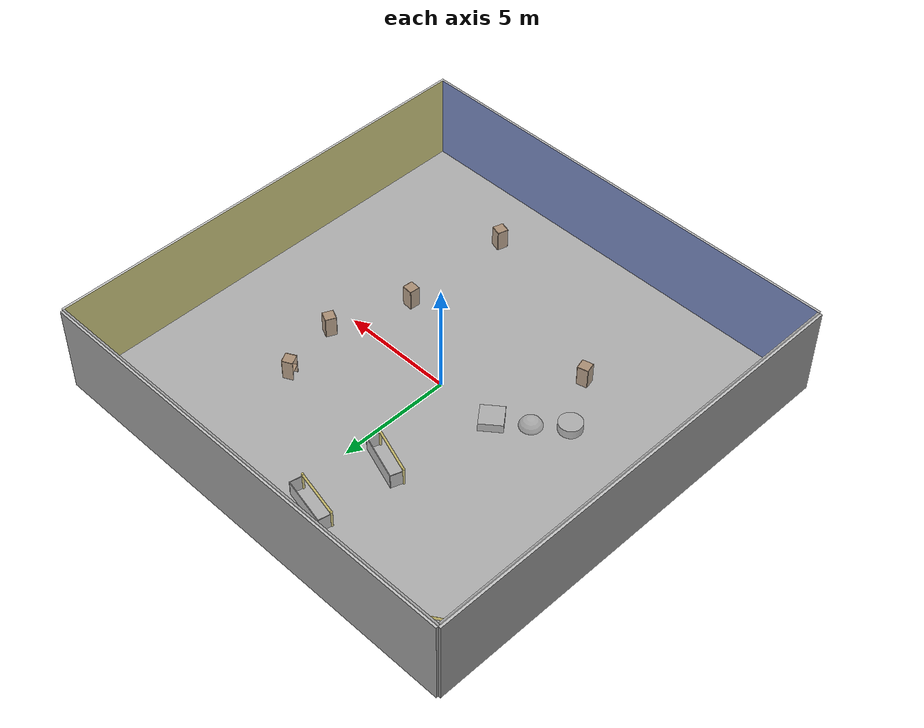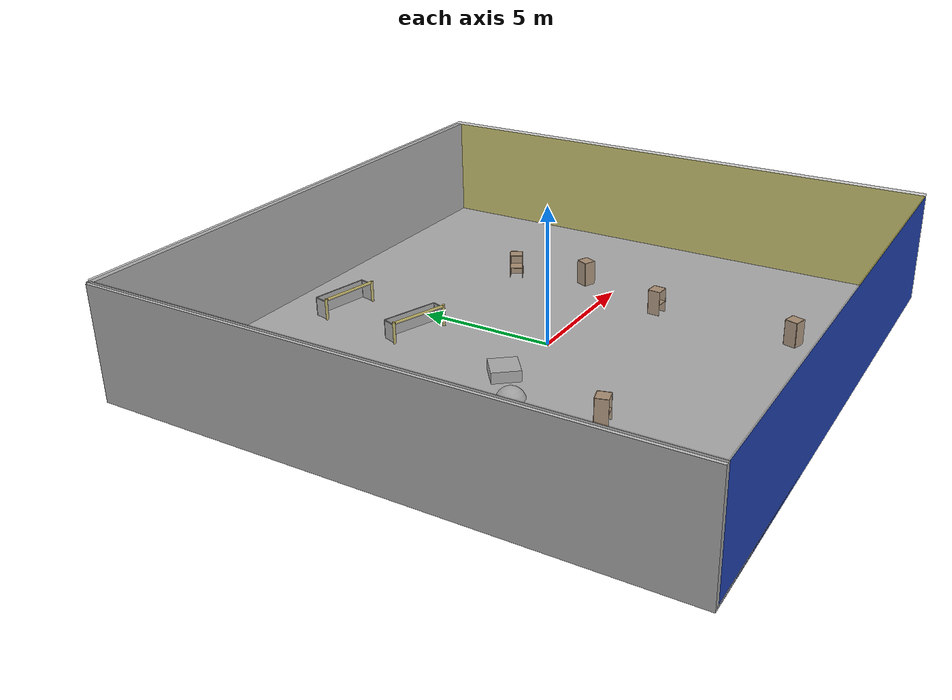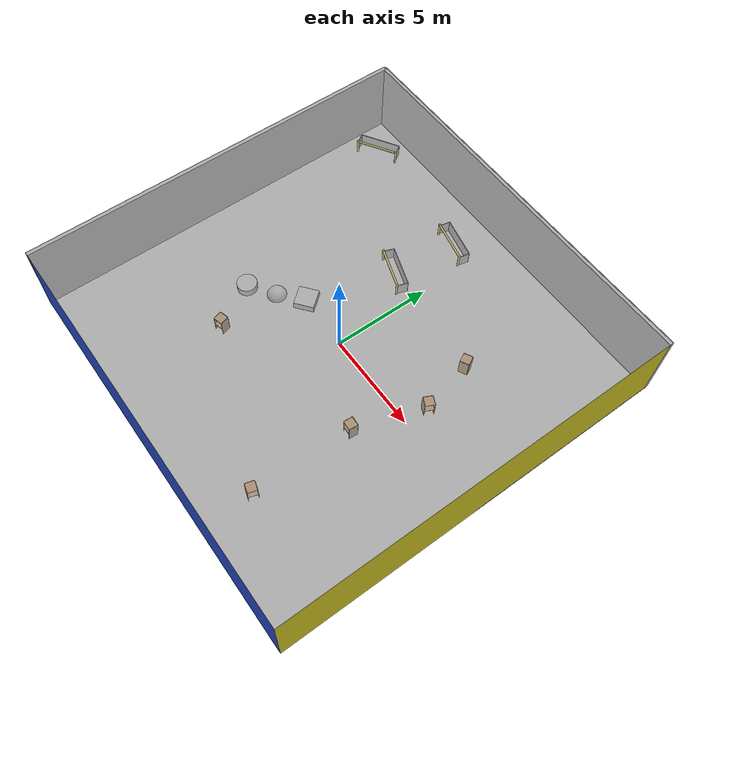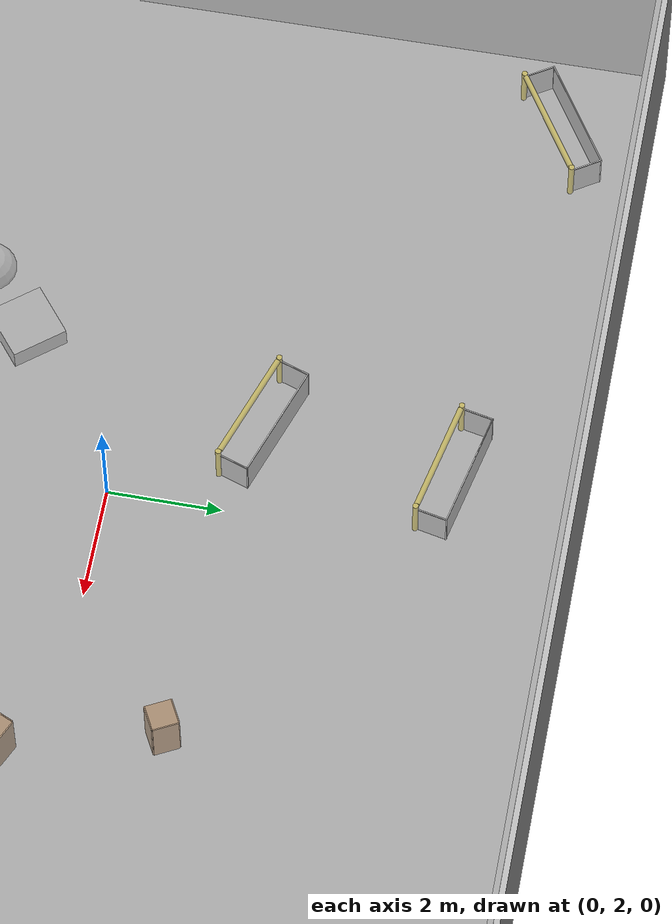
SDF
<sdf version="1.4">
 <world name="default">
  <physics type="ode">
   <max_step_size>0.001</max_step_size>
   <real_time_factor>1</real_time_factor>
   <real_time_update_rate>1000</real_time_update_rate>
   <gravity>0 0 -9.8</gravity>
  </physics>
  <scene><ambient>0.4 0.4 0.4 1</ambient><background>0.7 0.7 0.7 1</background><shadows>1</shadows></scene>
  <model name="Surrounding">
   <static>1</static>
   <link name="Ceiling">
    <collision name="Ceiling_Collision"><geometry><box><size>20 20 0.1</size></box></geometry></collision>
    <visual name="Ceiling_Visual">
     <geometry><box><size>20 20 0.1</size></box></geometry>
     <material>
      <script><uri>file://media/materials/scripts/gazebo.material</uri><name>Gazebo/GreyTransparent</name></script>
     </material>
    </visual>
    <pose>0 0 4.05 0 0 0</pose>
   </link>
   <link name="Wall_South">
    <collision name="Wall_South_Collision">
     <geometry><box><size>20 0 4</size></box></geometry>
     <pose>0 0 2 0 -0 0</pose>
    </collision>
    <visual name="Wall_South_Visual">
     <pose>0 0 2 0 -0 0</pose>
     <geometry><box><size>20 0 4</size></box></geometry>
     <material>
      <script><uri>file://media/materials/scripts/gazebo.material</uri><name>Gazebo/Blue</name></script>
     </material>
    </visual>
    <velocity_decay><linear>0</linear><angular>0</angular></velocity_decay>
    <pose>0 -10 0 0 -0 0</pose>
   </link>
   <link name="Wall_East">
    <collision name="Wall_21_Collision">
     <geometry><box><size>20 0 4</size></box></geometry>
     <pose>0 0 2 0 -0 0</pose>
    </collision>
    <visual name="Wall_21_Visual">
     <pose>0 0 2 0 -0 0</pose>
     <geometry><box><size>20 0 4</size></box></geometry>
     <material>
      <script><uri>file://media/materials/scripts/gazebo.material</uri><name>Gazebo/Yellow</name></script>
     </material>
    </visual>
    <velocity_decay><linear>0</linear><angular>0</angular></velocity_decay>
    <pose>10 0 0 0 -0 1.5708</pose>
   </link>
   <link name="Wall_North">
    <collision name="Wall_22_Collision">
     <geometry><box><size>20 0.2 4</size></box></geometry>
     <pose>0 0 2 0 -0 0</pose>
    </collision>
    <visual name="Wall_22_Visual">
     <pose>0 0 2 0 -0 0</pose>
     <geometry><box><size>20 0.2 4</size></box></geometry>
     <material>
      <script><uri>file://media/materials/scripts/gazebo.material</uri><name>Gazebo/JointAnchor</name></script>
     </material>
    </visual>
    <velocity_decay><linear>0</linear><angular>0</angular></velocity_decay>
    <pose>0 10 0 0 -0 0</pose>
   </link>
   <link name="Wall_West">
    <collision name="Wall_23_Collision">
     <geometry><box><size>20 0.2 4</size></box></geometry>
     <pose>0 0 2 0 -0 0</pose>
    </collision>
    <visual name="Wall_23_Visual">
     <pose>0 0 2 0 -0 0</pose>
     <geometry><box><size>20 0.2 4</size></box></geometry>
     <material>
      <script><uri>file://media/materials/scripts/gazebo.material</uri><name>Gazebo/Pioneer2Body</name></script>
     </material>
    </visual>
    <velocity_decay><linear>0</linear><angular>0</angular></velocity_decay>
    <pose>-10 0 0 0 0 -1.5708</pose>
   </link>
   <link name="Ground_link">
    <collision name="collision">
     <pose>0 0 .05 0 -0 0</pose>
     <geometry><box><size>20 20 0.1</size></box></geometry>
    </collision>
    <visual name="visual">
     <pose>0 0 .05 0 -0 0</pose>
     <geometry><box><size>20 20 0.1</size></box></geometry>
     <material>
      <script><uri>file://media/materials/scripts/gazebo.material</uri><name>Gazebo/LightOn</name></script>
     </material>
    </visual>
   </link>
   <static>1</static>
  </model>
  <spherical_coordinates>
   <surface_model>EARTH_WGS84</surface_model>
   <latitude_deg>0</latitude_deg>
   <longitude_deg>0</longitude_deg>
   <elevation>0</elevation>
   <heading_deg>0</heading_deg>
  </spherical_coordinates>
  <light name="lightball_0" type="diffuse">
   <diffuse>0.8 0.8 0.8 1</diffuse>
   <specular>0.2 0.2 0.2 1</specular>
   <attenuation>
    <range>100</range>
    <constant>0.7</constant>
    <linear>0.01</linear>
    <quadratic>0.001</quadratic>
   </attenuation>
   <direction>-0.5 0.1 -0.9</direction>
   <pose>-2.46909389168 4.97028638599 1.30079603521 0 0 0</pose>
  </light>
  <light name="lightball_1" type="diffuse">
   <diffuse>0.8 0.8 0.8 1</diffuse>
   <specular>0.2 0.2 0.2 1</specular>
   <attenuation>
    <range>100</range>
    <constant>0.7</constant>
    <linear>0.01</linear>
    <quadratic>0.001</quadratic>
   </attenuation>
   <direction>-0.5 0.1 -0.9</direction>
   <pose>-6.74002173532 -7.35271989055 3.68581821452 0 0 0</pose>
  </light>
  <light name="lightball_2" type="diffuse">
   <diffuse>0.8 0.8 0.8 1</diffuse>
   <specular>0.2 0.2 0.2 1</specular>
   <attenuation>
    <range>100</range>
    <constant>0.7</constant>
    <linear>0.01</linear>
    <quadratic>0.001</quadratic>
   </attenuation>
   <direction>-0.5 0.1 -0.9</direction>
   <pose>-8.66643307374 -5.47485891276 3.23098584297 0 0 0</pose>
  </light>
  <light name="lightball_3" type="diffuse">
   <diffuse>0.8 0.8 0.8 1</diffuse>
   <specular>0.2 0.2 0.2 1</specular>
   <attenuation>
    <range>100</range>
    <constant>0.7</constant>
    <linear>0.01</linear>
    <quadratic>0.001</quadratic>
   </attenuation>
   <direction>-0.5 0.1 -0.9</direction>
   <pose>-3.61015989726 2.32452836458 2.37536259964 0 0 0</pose>
  </light>
  <light name="lightball_4" type="diffuse">
   <diffuse>0.8 0.8 0.8 1</diffuse>
   <specular>0.2 0.2 0.2 1</specular>
   <attenuation>
    <range>100</range>
    <constant>0.7</constant>
    <linear>0.01</linear>
    <quadratic>0.001</quadratic>
   </attenuation>
   <direction>-0.5 0.1 -0.9</direction>
   <pose>0.455360185652 -5.94459789351 1.73864353289 0 0 0</pose>
  </light>
  <light name="lightball_5" type="diffuse">
   <diffuse>0.8 0.8 0.8 1</diffuse>
   <specular>0.2 0.2 0.2 1</specular>
   <attenuation>
    <range>100</range>
    <constant>0.7</constant>
    <linear>0.01</linear>
    <quadratic>0.001</quadratic>
   </attenuation>
   <direction>-0.5 0.1 -0.9</direction>
   <pose>-1.6803312655 9.57294373262 3.48305140032 0 0 0</pose>
  </light>
  <light name="lightball_6" type="diffuse">
   <diffuse>0.8 0.8 0.8 1</diffuse>
   <specular>0.2 0.2 0.2 1</specular>
   <attenuation>
    <range>100</range>
    <constant>0.7</constant>
    <linear>0.01</linear>
    <quadratic>0.001</quadratic>
   </attenuation>
   <direction>-0.5 0.1 -0.9</direction>
   <pose>-6.84665544186 -5.82967793277 1.05944860485 0 0 0</pose>
  </light>
  <light name="lightball_7" type="diffuse">
   <diffuse>0.8 0.8 0.8 1</diffuse>
   <specular>0.2 0.2 0.2 1</specular>
   <attenuation>
    <range>100</range>
    <constant>0.7</constant>
    <linear>0.01</linear>
    <quadratic>0.001</quadratic>
   </attenuation>
   <direction>-0.5 0.1 -0.9</direction>
   <pose>6.05571629122 5.10438381491 3.85072857771 0 0 0</pose>
  </light>
  <include>
   <uri>model://robocup_3Dsim_goal</uri>
   <pose>-8.17545251601 8.25751906729 0 0 0 2.13133026457</pose>
  </include>
  <include><uri>model://cabinet</uri><pose>-3.87311541271 -4.01630392614 0 0 0 1.82177569213</pose></include>
  <include>
   <uri>model://textured_shapes</uri>
   <pose>-3.96952002093 -0.88278566526 0 0 0 2.24431311453</pose>
  </include>
  <include>
   <uri>model://robocup_3Dsim_goal</uri>
   <pose>-1.6323700803 4.16822465541 0 0 0 1.24022847306</pose>
  </include>
  <include>
   <uri>model://robocup_3Dsim_goal</uri>
   <pose>-1.2210030114 7.51335421596 0 0 0 1.35814464745</pose>
  </include>
  <include><uri>model://cabinet</uri><pose>3.9200229905 -7.36457107818 0 0 0 2.85305165625</pose></include>
  <include><uri>model://cabinet</uri><pose>3.9918054891 -2.26681439805 0 0 0 1.49295031037</pose></include>
  <include><uri>model://cabinet</uri><pose>5.13210836872 1.17504239626 0 0 0 2.70900553937</pose></include>
  <include><uri>model://cabinet</uri><pose>4.45631547692 3.8617023018 0 0 0 0.479405586788</pose></include>
 </world>
</sdf>

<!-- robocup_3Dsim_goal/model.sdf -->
<sdf version="1.5">
  <model name="robocup_3d_goal">
    <static>true</static>
    <link name="left_post">
      <pose>0 1.05 0.45 0 0 0</pose>
      <collision name="collision">
        <geometry>
          <cylinder>
            <radius>0.05</radius>
            <length>0.9</length>
          </cylinder>
        </geometry>
      </collision>
      <visual name="visual">
        <geometry>
          <cylinder>
            <radius>0.05</radius>
            <length>0.9</length>
          </cylinder>
        </geometry>
        <material>
          <script>
            <uri>file://media/materials/scripts/gazebo.material</uri>
            <name>Gazebo/ZincYellow</name>
          </script>
        </material>
      </visual>
    </link>
    <link name="left_support_horiz_lower">
      <pose>0.30 1.05 0.01 0 0 0</pose>
      <collision name="collision">
        <geometry>
          <box>
            <size>0.50 0.02 0.02</size>
          </box>
        </geometry>
      </collision>
      <visual name="visual">
        <geometry>
          <box>
            <size>0.50 0.02 0.02</size>
          </box>
        </geometry>
        <material>
          <script>
            <uri>file://media/materials/scripts/gazebo.material</uri>
            <name>Gazebo/White</name>
          </script>
        </material>
      </visual>
    </link>
    <link name="left_support_horiz_upper">
      <pose>0.30 1.05 0.79 0 0 0</pose>
      <collision name="collision">
        <geometry>
          <box>
            <size>0.50 0.02 0.02</size>
          </box>
        </geometry>
      </collision>
      <visual name="visual">
        <geometry>
          <box>
            <size>0.50 0.02 0.02</size>
          </box>
        </geometry>
        <material>
          <script>
            <uri>file://media/materials/scripts/gazebo.material</uri>
            <name>Gazebo/White</name>
          </script>
        </material>
      </visual>
    </link>
    <link name="left_support_vertical">
      <pose>0.56 1.05 0.4 0 1.5708 0</pose>
      <collision name="collision">
        <geometry>
          <box>
            <size>0.80 0.02 0.02</size>
          </box>
        </geometry>
      </collision>
      <visual name="visual">
        <geometry>
          <box>
            <size>0.80 0.02 0.02</size>
          </box>
        </geometry>
        <material>
          <script>
            <uri>file://media/materials/scripts/gazebo.material</uri>
            <name>Gazebo/White</name>
          </script>
        </material>
      </visual>
    </link>
    <link name="right_support_horiz_lower">
      <pose>0.30 -1.05 0.01 0 0 0</pose>
      <collision name="collision">
        <geometry>
          <box>
            <size>0.50 0.02 0.02</size>
          </box>
        </geometry>
      </collision>
      <visual name="visual">
        <geometry>
          <box>
            <size>0.50 0.02 0.02</size>
          </box>
        </geometry>
        <material>
          <script>
            <uri>file://media/materials/scripts/gazebo.material</uri>
            <name>Gazebo/White</name>
          </script>
        </material>
      </visual>
    </link>
    <link name="right_support_horiz_upper">
      <pose>0.30 -1.05 0.79 0 0 0</pose>
      <collision name="collision">
        <geometry>
          <box>
            <size>0.50 0.02 0.02</size>
          </box>
        </geometry>
      </collision>
      <visual name="visual">
        <geometry>
          <box>
            <size>0.50 0.02 0.02</size>
          </box>
        </geometry>
        <material>
          <script>
            <uri>file://media/materials/scripts/gazebo.material</uri>
            <name>Gazebo/White</name>
          </script>
        </material>
      </visual>
    </link>
    <link name="right_support_vertical">
      <pose>0.56 -1.05 0.4 0 1.5708 0</pose>
      <collision name="collision">
        <geometry>
          <box>
            <size>0.80 0.02 0.02</size>
          </box>
        </geometry>
      </collision>
      <visual name="visual">
        <geometry>
          <box>
            <size>0.80 0.02 0.02</size>
          </box>
        </geometry>
        <material>
          <script>
            <uri>file://media/materials/scripts/gazebo.material</uri>
            <name>Gazebo/White</name>
          </script>
        </material>
      </visual>
    </link>
    <link name="center_support_horiz_lower">
      <pose>0.56 0 0.01 0 1.5708 0</pose>
      <collision name="collision">
        <geometry>
          <box>
            <size>0.02 2.08 0.02</size>
          </box>
        </geometry>
      </collision>
      <visual name="visual">
        <geometry>
          <box>
            <size>0.02 2.08 0.02</size>
          </box>
        </geometry>
        <material>
          <script>
            <uri>file://media/materials/scripts/gazebo.material</uri>
            <name>Gazebo/White</name>
          </script>
        </material>
      </visual>
    </link>
    <link name="center_support_horiz_upper">
      <pose>0.56 0 0.79 0 1.5708 0</pose>
      <collision name="collision">
        <geometry>
          <box>
            <size>0.02 2.08 0.02</size>
          </box>
        </geometry>
      </collision>
      <visual name="visual">
        <geometry>
          <box>
            <size>0.02 2.08 0.02</size>
          </box>
        </geometry>
        <material>
          <script>
            <uri>file://media/materials/scripts/gazebo.material</uri>
            <name>Gazebo/White</name>
          </script>
        </material>
      </visual>
    </link>
    <link name="right_post">
      <pose>0 -1.05 0.45 0 0 0</pose>
      <collision name="collision">
        <geometry>
          <cylinder>
            <radius>0.05</radius>
            <length>0.9</length>
          </cylinder>
        </geometry>
      </collision>
      <visual name="visual">
        <geometry>
          <cylinder>
            <radius>0.05</radius>
            <length>0.9</length>
          </cylinder>
        </geometry>
        <material>
          <script>
            <uri>file://media/materials/scripts/gazebo.material</uri>
            <name>Gazebo/ZincYellow</name>
          </script>
        </material>
      </visual>
    </link>
    <link name="crossbar">
      <pose>0 0 0.85 1.57 1.57 0</pose>
      <collision name="collision">
        <geometry>
          <cylinder>
            <radius>0.05</radius>
            <length>2.0</length>
          </cylinder>
        </geometry>
      </collision>
      <visual name="visual">
        <geometry>
          <cylinder>
            <radius>0.05</radius>
            <length>2.0</length>
          </cylinder>
        </geometry>
        <material>
          <script>
            <uri>file://media/materials/scripts/gazebo.material</uri>
            <name>Gazebo/ZincYellow</name>
          </script>
        </material>
      </visual>
    </link>
    <link name="center_net">
      <pose>0.56 0 0.40 0 0 0</pose>
      <collision name="collision">
        <geometry>
          <box>
            <size>0.01 2.1 0.80</size>
          </box>
        </geometry>
      </collision>
      <visual name="visual">
        <geometry>
          <box>
            <size>0.01 2.1 0.80</size>
          </box>
        </geometry>
        <material>
          <script>
            <uri>model://../model_source/models/robocup09_spl_field/materials/scripts/</uri>
            <uri>model://../model_source/models/robocup09_spl_field/materials/textures/</uri>
            <name>RoboCup/Net</name>
          </script>
        </material>
      </visual>
    </link>
    <link name="left_net">
      <pose>0.30 1.05 0.40 0 0 0</pose>
      <collision name="collision">
        <geometry>
          <box>
            <size>0.50 0.01 0.76</size>
          </box>
        </geometry>
      </collision>
      <visual name="visual">
        <geometry>
          <box>
            <size>0.50 0.01 0.76</size>
          </box>
        </geometry>
        <material>
          <script>
            <uri>model://../model_source/models/robocup09_spl_field/materials/scripts/</uri>
            <uri>model://../model_source/models/robocup09_spl_field/materials/textures/</uri>
            <name>RoboCup/Net</name>
          </script>
        </material>
      </visual>
    </link>
    <link name="right_net">
      <pose>0.30 -1.05 0.40 0 0 0</pose>
      <collision name="collision">
        <geometry>
          <box>
            <size>0.50 0.01 0.76</size>
          </box>
        </geometry>
      </collision>
      <visual name="visual">
        <geometry>
          <box>
            <size>0.50 0.01 0.76</size>
          </box>
        </geometry>
        <material>
          <script>
            <uri>model://../model_source/models/robocup09_spl_field/materials/scripts/</uri>
            <uri>model://../model_source/models/robocup09_spl_field/materials/textures/</uri>
            <name>RoboCup/Net</name>
          </script>
        </material>
      </visual>
    </link>
  </model>
</sdf>

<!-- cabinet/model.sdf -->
<sdf version="1.5">
  <model name="cabinet">
    <static>true</static>
    <link name="cabinet_bottom_plate">
      <inertial>
        <pose>0 0 -1 0 0 0</pose>
        <inertia>
          <ixx>2.050000</ixx>
          <ixy>0</ixy>
          <ixz>0</ixz>
          <iyy>2.050000</iyy>
          <iyz>0</iyz>
          <izz>2.050000</izz>
        </inertia>
        <mass>25.000000</mass>
      </inertial>
      <collision name="cabinet_bottom_plate_geom">
        <pose>0 0 0.010000 0 0 0</pose>
        <geometry>
          <box>
            <size>0.450000 0.450000 0.020000</size>
          </box>
        </geometry>
      </collision>
      <visual name="cabinet_bottom_plate_geom_visual">
        <pose>0 0 0.010000 0 0 0</pose>
        <geometry>
          <box>
            <size>0.450000 0.450000 0.020000</size>
          </box>
        </geometry>
        <material>
          <script>
            <uri>model://media/materials/scripts/gazebo.material</uri>
            <name>Gazebo/Wood</name>
          </script>
        </material>
      </visual>
      <collision name="cabinet_bottom_plate_geom_cabinet_back_plate">
        <pose>0.235000 0 0.510000 0 0 0</pose>
        <geometry>
          <box>
            <size>0.020000 0.450000 1.020000</size>
          </box>
        </geometry>
      </collision>
      <visual name="cabinet_bottom_plate_geom_cabinet_back_plate_visual">
        <pose>0.235000 0 0.510000 0 0 0</pose>
        <geometry>
          <box>
            <size>0.020000 0.450000 1.020000</size>
          </box>
        </geometry>
        <material>
          <script>
            <uri>model://media/materials/scripts/gazebo.material</uri>
            <name>Gazebo/Wood</name>
          </script>
        </material>
      </visual>
      <collision name="cabinet_bottom_plate_geom_cabinet_left_plate">
        <pose>0 0.235000 0.510000 0 0 0</pose>
        <geometry>
          <box>
            <size>0.450000 0.020000 1.020000</size>
          </box>
        </geometry>
      </collision>
      <visual name="cabinet_bottom_plate_geom_cabinet_left_plate_visual">
        <pose>0 0.235000 0.510000 0 0 0</pose>
        <geometry>
          <box>
            <size>0.450000 0.020000 1.020000</size>
          </box>
        </geometry>
        <material>
          <script>
            <uri>model://media/materials/scripts/gazebo.material</uri>
            <name>Gazebo/Wood</name>
          </script>
        </material>
      </visual>
      <collision name="cabinet_bottom_plate_geom_cabinet_middle_plate">
        <pose>0 0 0.510000 0 0 0</pose>
        <geometry>
          <box>
            <size>0.450000 0.450000 0.020000</size>
          </box>
        </geometry>
      </collision>
      <visual name="cabinet_bottom_plate_geom_cabinet_middle_plate_visual">
        <pose>0 0 0.510000 0 0 0</pose>
        <geometry>
          <box>
            <size>0.450000 0.450000 0.020000</size>
          </box>
        </geometry>
        <material>
          <script>
            <uri>model://media/materials/scripts/gazebo.material</uri>
            <name>Gazebo/Wood</name>
          </script>
        </material>
      </visual>
      <collision name="cabinet_bottom_plate_geom_cabinet_right_plate">
        <pose>0 -0.235000 0.510000 0 0 0</pose>
        <geometry>
          <box>
            <size>0.450000 0.020000 1.020000</size>
          </box>
        </geometry>
      </collision>
      <visual name="cabinet_bottom_plate_geom_cabinet_right_plate_visual">
        <pose>0 -0.235000 0.510000 0 0 0</pose>
        <geometry>
          <box>
            <size>0.450000 0.020000 1.020000</size>
          </box>
        </geometry>
        <material>
          <script>
            <uri>model://media/materials/scripts/gazebo.material</uri>
            <name>Gazebo/Wood</name>
          </script>
        </material>
      </visual>
      <collision name="cabinet_bottom_plate_geom_cabinet_top_plate">
        <pose>0 0 1.010000 0 0 0</pose>
        <geometry>
          <box>
            <size>0.450000 0.450000 0.020000</size>
          </box>
        </geometry>
      </collision>
      <visual name="cabinet_bottom_plate_geom_cabinet_top_plate_visual">
        <pose>0 0 1.010000 0 0 0</pose>
        <geometry>
          <box>
            <size>0.450000 0.450000 0.020000</size>
          </box>
        </geometry>
        <material>
          <script>
            <uri>model://media/materials/scripts/gazebo.material</uri>
            <name>Gazebo/Wood</name>
          </script>
        </material>
      </visual>
    </link>
  </model>
</sdf>

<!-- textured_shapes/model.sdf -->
<sdf version="1.6">
  <model name="textured_shapes">
    <pose>0 0 0.5 0 0 0</pose>
    <link name="box">
      <pose>0 -1.5 0 0 0 0</pose>
      <collision name="collision">
        <geometry>
          <box>
            <size>1 1 1</size>
          </box>
        </geometry>
      </collision>
      <visual name="visual">
        <geometry>
          <box>
            <size>1 1 1</size>
          </box>
        </geometry>
        <material>
          <script>
            <uri>model://../model_source/models/textured_shapes/materials/scripts</uri>
            <uri>model://../model_source/models/textured_shapes/materials/textures</uri>
            <name>TexturedShape/Squares</name>
          </script>
        </material>
      </visual>
    </link>
    <link name="sphere">
      <collision name="collision">
        <geometry>
          <sphere>
            <radius>0.5</radius>
          </sphere>
        </geometry>
      </collision>
      <visual name="visual">
        <geometry>
          <sphere>
            <radius>0.5</radius>
          </sphere>
        </geometry>
        <material>
          <script>
            <uri>model://../model_source/models/textured_shapes/materials/scripts</uri>
            <uri>model://../model_source/models/textured_shapes/materials/textures</uri>
            <name>TexturedShape/Squares</name>
          </script>
        </material>
      </visual>
    </link>
    <link name="cylinder">
      <pose>0 1.5 0 0 0 0</pose>
      <collision name="collision">
        <geometry>
          <cylinder>
            <radius>0.5</radius>
            <length>1</length>
          </cylinder>
        </geometry>
      </collision>
      <visual name="visual">
        <geometry>
          <cylinder>
            <radius>0.5</radius>
            <length>1</length>
          </cylinder>
        </geometry>
        <material>
          <script>
            <uri>model://../model_source/models/textured_shapes/materials/scripts</uri>
            <uri>model://../model_source/models/textured_shapes/materials/textures</uri>
            <name>TexturedShape/Squares</name>
          </script>
        </material>
      </visual>
    </link>
  </model>
</sdf>
